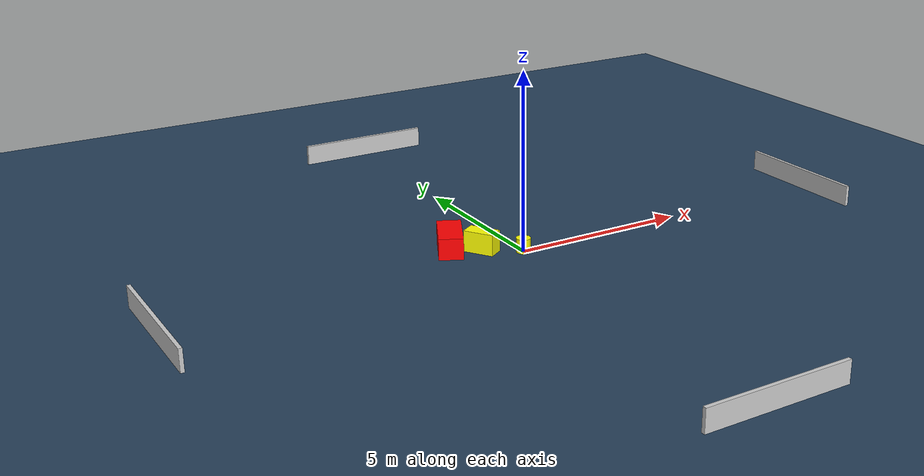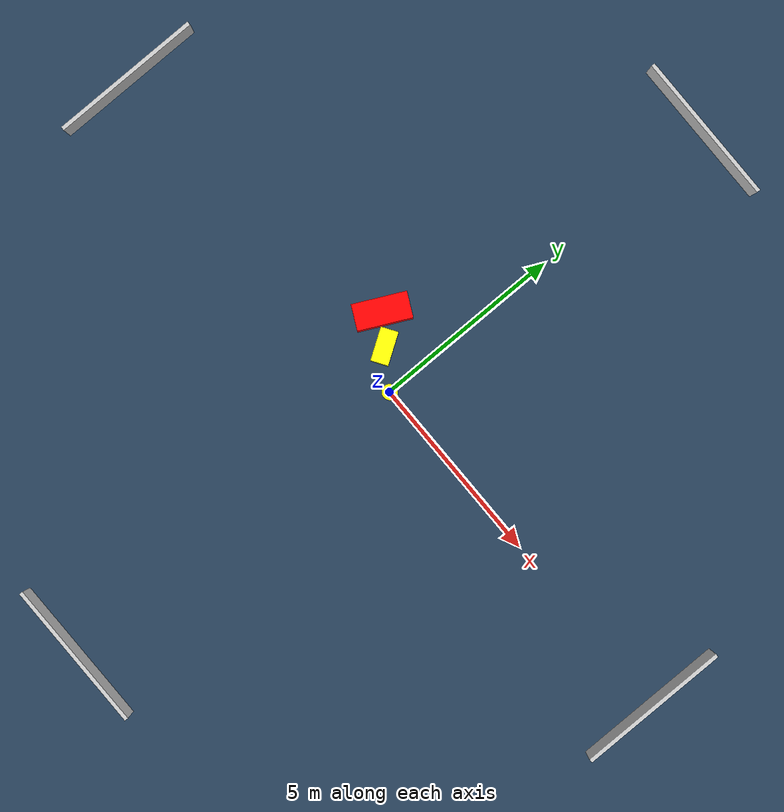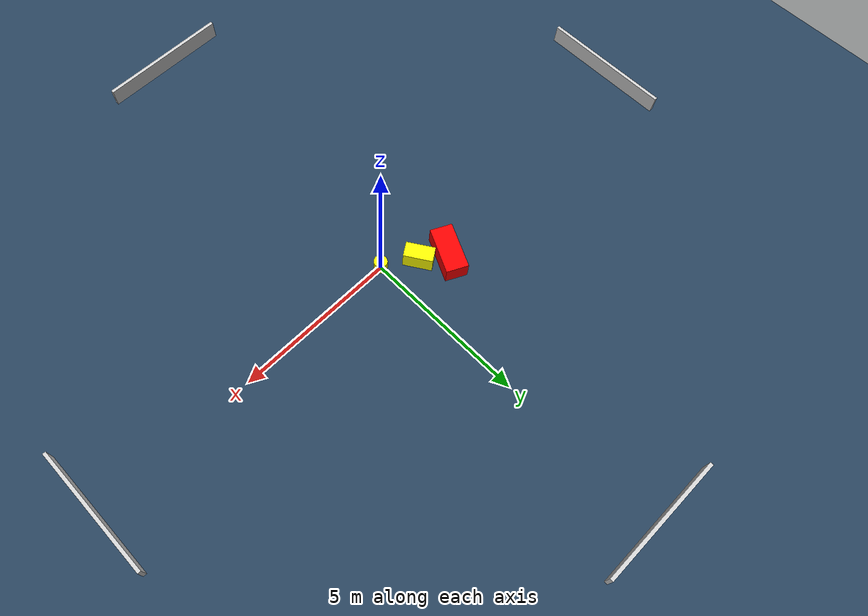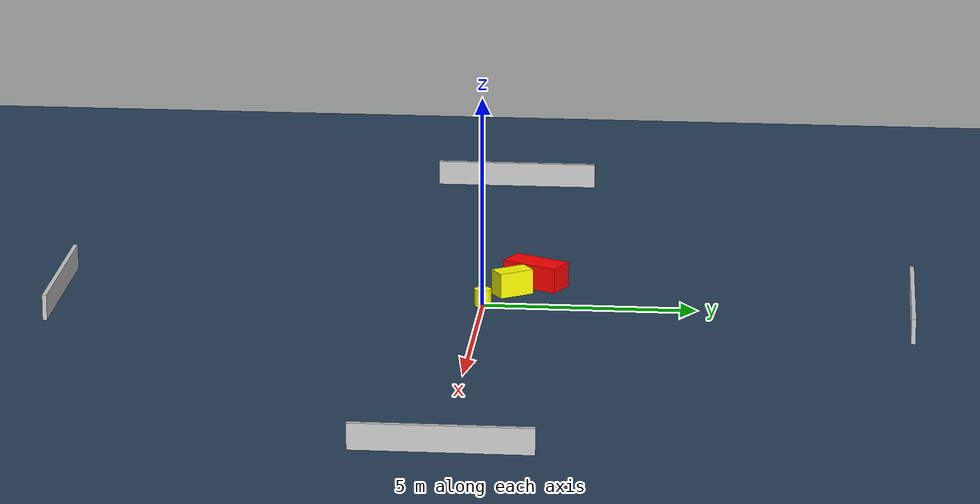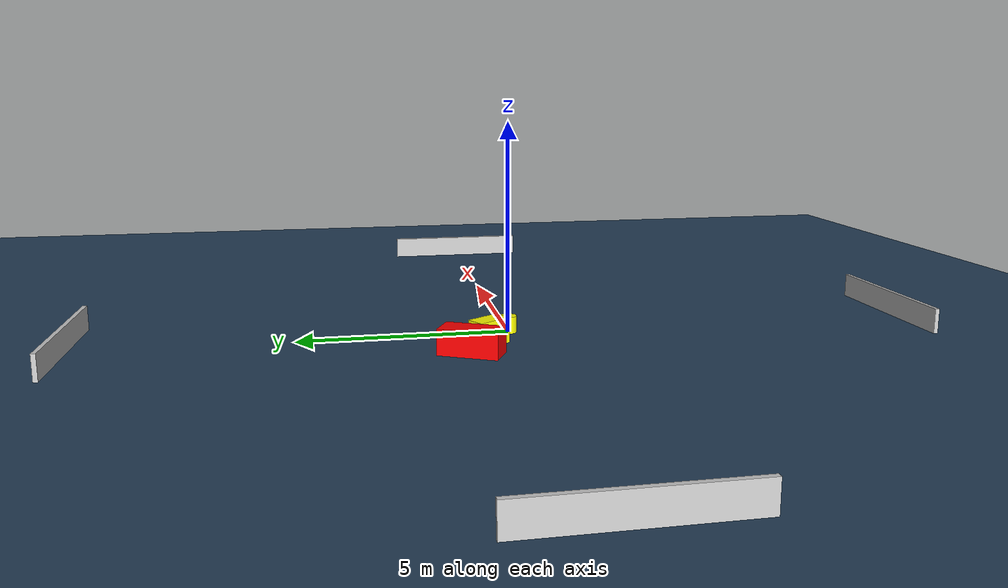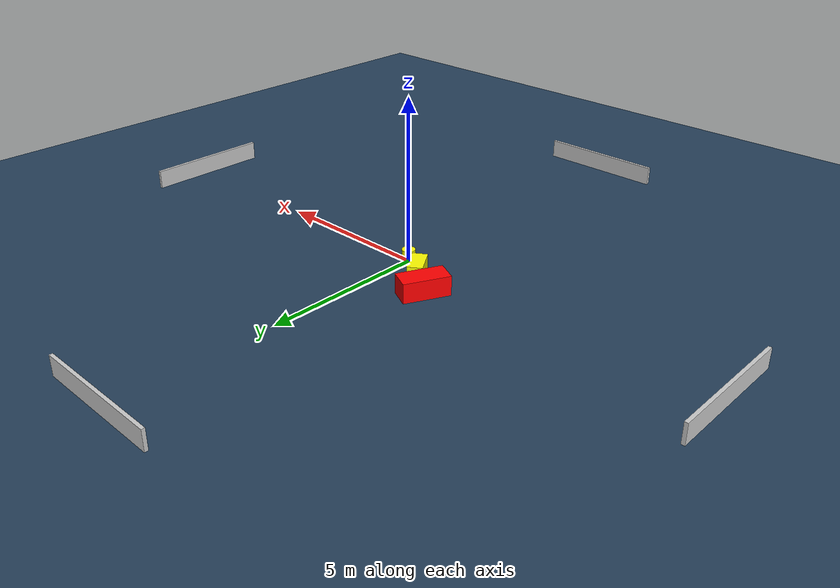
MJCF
<?xml version="1.0" ?>
<mujoco model="generated_environment">
  <option timestep="0.01" integrator="RK4" cone="elliptic"/>
  <default>
    <geom density="1"/>
  </default>
  <asset>
    <texture builtin="gradient" height="3072" name="skybox" rgb1="0.3 0.5 0.7" rgb2="0 0 0" type="skybox" width="512"/>
    <texture builtin="checker" height="300" name="groundplane" rgb1="0.2 0.3 0.4" rgb2="0.1 0.2 0.3" type="2d" width="300"/>
    <material name="groundplane" reflectance="0.2" texrepeat="5 5" texture="groundplane"/>
  </asset>
  <worldbody>
    <light dir="0 0 -1" directional="true" pos="0 0 1.5"/>
    <geom condim="3" friction="0.5 0.005 0.001" material="groundplane" name="floor" pos="0 0 0" size="0 0 0.05" type="plane"/>
    <body name="walls">
      <geom name="wall_1" condim="4" pos="-10.0 0.0 0.3" rgba="0.800000011920929 0.800000011920929 0.800000011920929 1.0" size="0.05 2.0 0.3" type="box"/>
      <geom name="wall_2" condim="4" pos="10.0 0.0 0.3" rgba="0.800000011920929 0.800000011920929 0.800000011920929 1.0" size="0.05 2.0 0.3" type="box"/>
      <geom name="wall_3" condim="4" pos="0.0 -10.0 0.3" rgba="0.800000011920929 0.800000011920929 0.800000011920929 1.0" size="2.0 0.05 0.3" type="box"/>
      <geom name="wall_4" condim="4" pos="0.0 10.0 0.3" rgba="0.800000011920929 0.800000011920929 0.800000011920929 1.0" size="2.0 0.05 0.3" type="box"/>
    </body>
    <body name="robot">
      <joint name="joint_x" type="slide" pos="0 0 0" axis="1 0 0"/>
      <joint name="joint_y" type="slide" pos="0 0 0" axis="0 1 0"/>
      <geom name="robot" type="cylinder" pos="0.0 0.0 0.2" size="0.2 0.2 0.0" mass="5.0" friction="1.0 0.005 0.0001" condim="4" rgba="1.0 1.0 0.0 1.0"/>
    </body>
    <body name="obstacle_1_movable">
      <geom name="obstacle_1_movable" condim="4" pos="-0.9373178230015975 0.617370637898042 0.3" euler="0 0 123.01255984051264" friction="0.0 0.005 0.001" rgba="1.0 1.0 0.0 1.0" size="0.4318685687322138 0.22744338246595397 0.3" type="box" mass="0.1"/>
      <joint type="free"/>
    </body>
    <body name="obstacle_2_static">
      <geom name="obstacle_2_static" condim="4" pos="-1.6332716558424338 1.1207920609136366 0.3" euler="0 0 153.8680855189307" friction="0.0 0.005 0.001" rgba="1.0 0.0 0.0 1.0" size="0.3348934777172968 0.7024529115419758 0.3" type="box"/>
    </body>
  </worldbody>
  <actuator>
    <motor name="actuator_x" joint="joint_x" gear="1" ctrlrange="-1 1"/>
    <motor name="actuator_y" joint="joint_y" gear="1" ctrlrange="-1 1"/>
  </actuator>
</mujoco>
